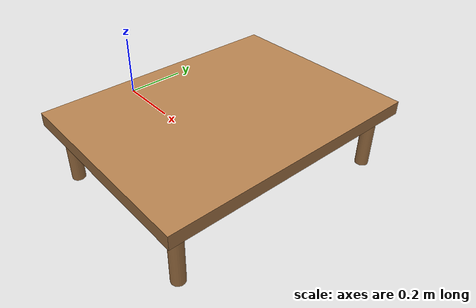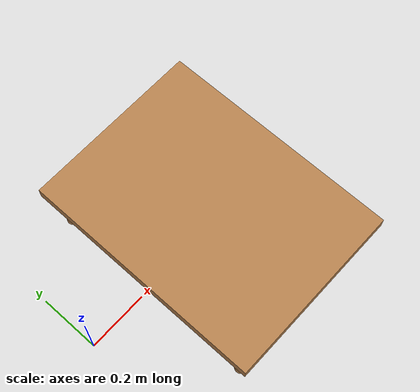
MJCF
<mujoco model="table">
    <compiler angle="radian"/>

    <asset>
        <material name="table_wood" rgba="0.7 0.5 0.3 1"/>
        <material name="red_zone" rgba="1 0.2 0.2 1"/>
        <material name="green_zone" rgba="0.2 0.8 0.2 1"/>
    </asset>

    <worldbody>
        <body name="table" pos="0.5 0 0">
            <!-- Base de la mesa (marrón) -->
            <geom name="table_base" type="box" size="0.3 0.4 0.02" pos="0 0 0.15" material="table_wood"/>

            <!-- Zone de destino (azul) -->
            <!-- Zonas de color (ligeramente elevadas sobre la superficie) -->

            <!-- Patas de la mesa -->
            <geom name="leg1" type="cylinder" size="0.02 0.1" pos="0.25 0.35 0.05" rgba="0.7 0.5 0.3 1"/>
            <geom name="leg2" type="cylinder" size="0.02 0.1" pos="0.25 -0.35 0.05" rgba="0.7 0.5 0.3 1"/>
            <geom name="leg3" type="cylinder" size="0.02 0.1" pos="-0.25 0.35 0.05" rgba="0.7 0.5 0.3 1"/>
            <geom name="leg4" type="cylinder" size="0.02 0.1" pos="-0.25 -0.35 0.05" rgba="0.7 0.5 0.3 1"/>
        </body>
    </worldbody>
</mujoco>
